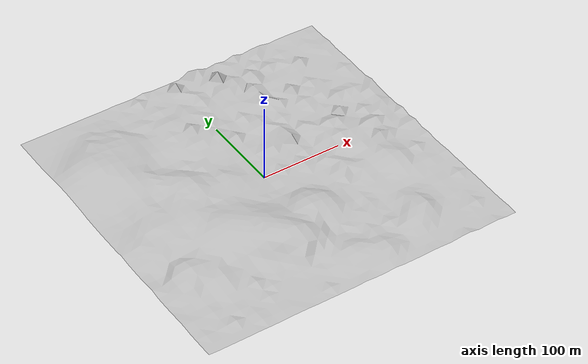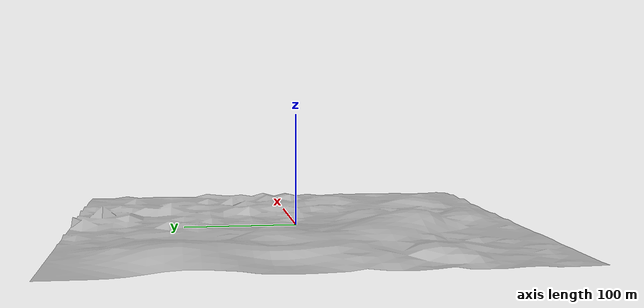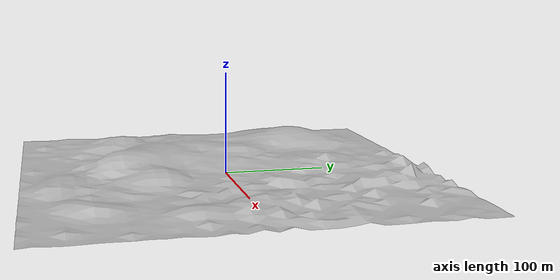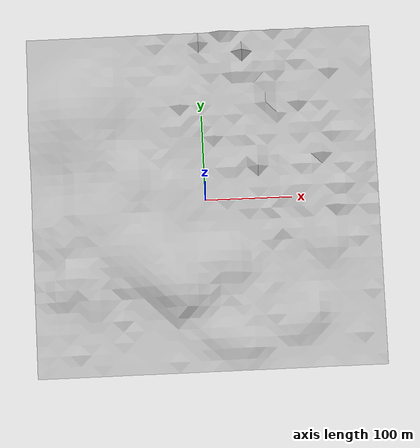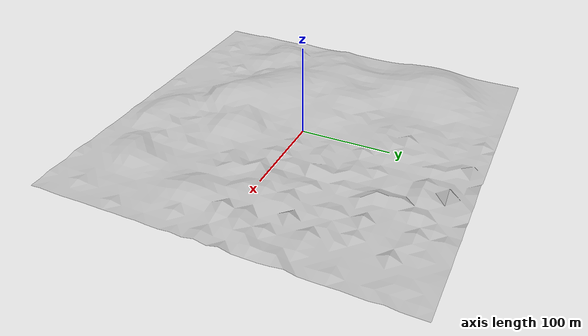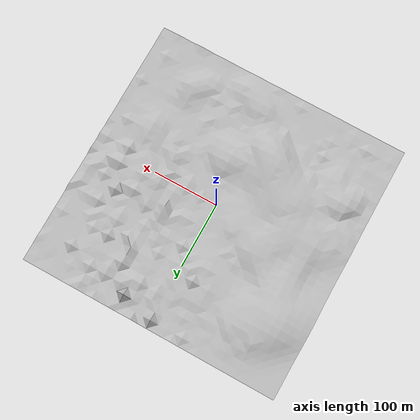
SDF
<?xml version="1.0"?>
<sdf version="1.4">
  <model name="terrain">
    <static>true</static>
    <link name="link">
      <visual name="visual">
        <geometry>
          <mesh>
            <uri>file://$(find freefloating_test)/objects/terrain.dae</uri>
          </mesh>
        </geometry>
      </visual>
      <collision name="collision">
        <geometry>
          <mesh>
            <uri>file://$(find freefloating_test)/objects/terrain.dae</uri>
          </mesh>
        </geometry>
        <surface>
          <friction>
            <ode>
              <mu>100</mu>
              <mu2>50</mu2>
            </ode>
          </friction>
        </surface>
      </collision>
    </link>
  </model>
</sdf>
